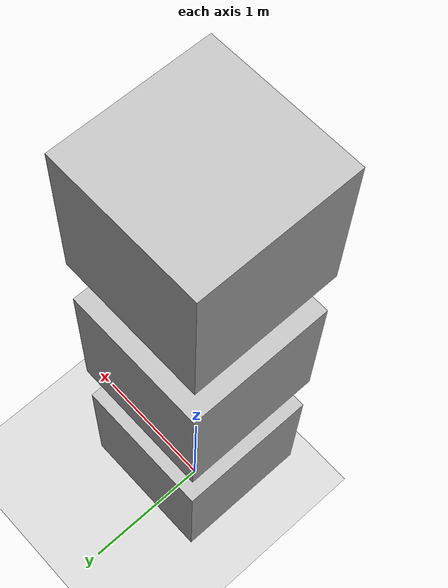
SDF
<?xml version="1.0"?>
<sdf version="1.4">
  <world name="default">

    <!-- Ground Plane -->
    <include>
      <uri>model://ground_plane</uri>
    </include>

    <include>
      <uri>model://sun</uri>
    </include>

    <model name="boxes">
      <link name="link_1">
      <pose>0 0 1 0 0 0</pose>
        <collision name="collision">
          <geometry>
            <box>
              <size>1 1 1</size>
            </box>
          </geometry>
        </collision>
        <visual name="visual">
          <geometry>
            <box>
              <size>1 1 1</size>
            </box>
          </geometry>
        </visual>
      </link>

      <link name="link_2">
      <pose>0 0 2.4 0 0 0</pose>
        <collision name="collision1">
          <geometry>
            <box>
              <size>1 1 1</size>
            </box>
          </geometry>
        </collision>
        <visual name="visual1">
          <geometry>
            <box>
              <size>1 1 1</size>
            </box>
          </geometry>
        </visual>
      </link>

      <link name="link_3">
        <pose>0 -0 3.8 0 0 0</pose>
        <collision name="collision2">
          <geometry>
            <box>
              <size>1 1 1</size>
            </box>
          </geometry>
        </collision>
        <visual name="visual2">
          <geometry>
            <box>
              <size>1 1 1</size>
            </box>
          </geometry>
        </visual>
      </link>

      <joint name='JOINT_1_2' type='fixed'>
      <parent>link_1</parent>
      <child>link_2</child>
      <pose>0 0 -0.7 0 -0 0</pose>
      <physics>
        <ode>
          <limit>
            <cfm>0</cfm>
            <erp>0.2</erp>
          </limit>
          <suspension>
            <cfm>0</cfm>
            <erp>0.2</erp>
          </suspension>
        </ode>
      </physics>
    </joint>

    <joint name='JOINT_2_3' type='fixed'>
      <parent>link_2</parent>
      <child>link_3</child>
      <pose>0 0 -0.7 0 -0 0</pose>
      <physics>
        <ode>
          <limit>
            <cfm>0</cfm>
            <erp>0.2</erp>
          </limit>
          <suspension>
            <cfm>0</cfm>
            <erp>0.2</erp>
          </suspension>
        </ode>
      </physics>
    </joint>

      <plugin name="gazebo_ros_modelate_tether" filename="libgazebo_ros_modelate_tether.so">
        <namespace>tether</namespace>
        <numLinkTether>3</numLinkTether>
        <nameLinkFrame>link</nameLinkFrame>
        <nameJointFrame>tether::JOINT</nameJointFrame>
        <initTetherLength>-1.0</initTetherLength>
        <initLengthLink> 1.0 </initLengthLink>
        <maxLengthTether>20.0</maxLengthTether>
        <minLengthTether>0.5</minLengthTether>
        <lengthGap>0.2</lengthGap>
      </plugin>

      <static>0</static>

    </model>

  </world>
</sdf>
